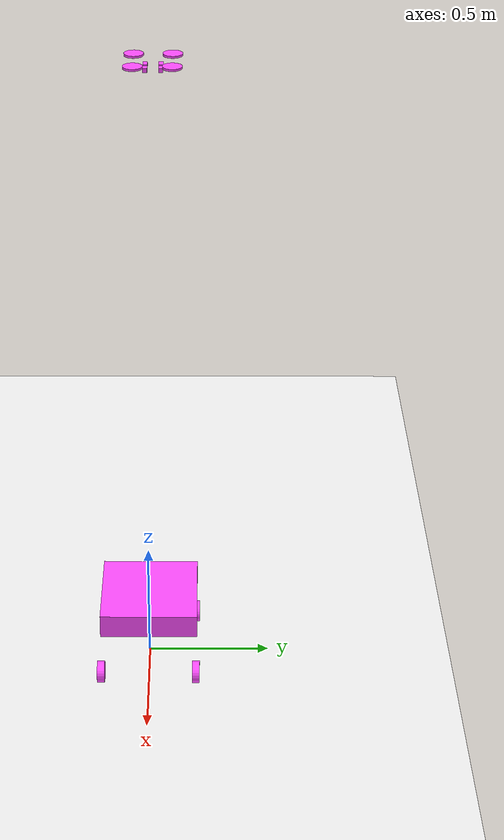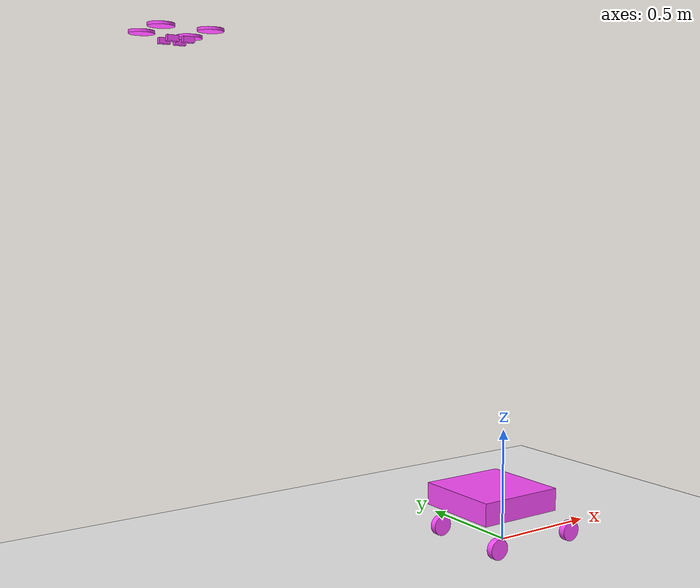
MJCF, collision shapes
<mujoco model="drone-v1">
    <include file="scenes/scene.xml"/>
    <include file="assets/dep-v2.3.xml"/>
    <compiler meshdir="meshes/"/>
    <worldbody>
    <camera name="Main_fixed_cam" pos="7 0 1" xyaxes="0 1 0 -0.1 0 1" />
        <body name="drone_frame" pos="-1.5 0 2">
            <camera name="Tracking_com" mode="trackcom" pos="-2.5 0 1.6" xyaxes="0 -1 0 0.6 0 1"/>
            <joint name="Tx" pos="0 0 0" axis="1 0 0" limited="true" type="slide" range="-10 100"/>
            <joint name="Ty" pos="0 0 0" axis="0 1 0" limited="true" type="slide" range="-10 100"/>
            <joint name="Tz" pos="0 0 0" axis="0 0 1" limited="true" type="slide" range="-10 100"/>
            <joint name="Rx" pos="0 0 0" axis="1 0 0" limited="true" range="-20 20"/>
            <joint name="Ry" pos="0 0 0" axis="0 1 0" limited="true" range="-20 20"/>
            <joint name="Rz" pos="0 0 0" axis="0 0 1" limited="true" range="-20 100"/>
            <include file="assets/chain-v2.3.xml"/>
        </body>

        <body name="car_frame" pos="0 0 0">
            <joint name="Tx_car" pos="0 0 0" axis="1 0 0" limited="true" type="slide" range="-10 100"/>
            <joint name="Ty_car" pos="0 0 0" axis="0 1 0" limited="true" type="slide" range="-10 100"/>
            <joint name="Tz_car" pos="0 0 0" axis="0 0 1" limited="true" type="slide" range="-10 100"/>
            <joint name="Rx_car" pos="0 0 0" axis="1 0 0" limited="true" range="-20 20"/>
            <joint name="Ry_car" pos="0 0 0" axis="0 1 0" limited="true" range="-20 20"/>
            <joint name="Rz_car" pos="0 0 0" axis="0 0 1" limited="true" range="-20 100"/>
            <include file="assets/chain-v2.4.xml"/>
        </body>

    </worldbody>
</mujoco>

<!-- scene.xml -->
<mujocoinclude>
  <asset>
    <!-- builtin="flat"-->
    <texture name="texplane" type="2d" builtin="flat" rgb1="0.95 0.95 0.95"  width="5120" height="5120"/>
    <material name="MatPlane" reflectance="0" texture="texplane" texrepeat="1 1" texuniform="true"  />
    <mesh name="test_Map" file="curved_map.STL"/>
    <mesh name="strai_Map" file="straight_line4.STL"/>

    <mesh name="curved_Map1" file="curved_map_1.STL"/>
    <mesh name="curved_Map2" file="curved_map_2.STL"/>

    <mesh name="C_Map1" file="C-map_1.STL"/>
    <mesh name="C_Map2" file="C-map_2.STL"/>
    <mesh name="C_Map3" file="C-map_3.STL"/>
    <mesh name="C_Map4" file="C-map_4.STL"/>
  </asset>

  <visual>
    <headlight ambient="0.5 0.5 0.5" />
  </visual>

  <worldbody>
    <light directional="false" diffuse=".3 .3 .3" specular="0.3 0.3 0.3" pos="0 0 1000" />

    <geom name="floor" pos="0 0 0" size="30 5 .1" conaffinity="1" contype="1" type="plane" material="MatPlane" condim="4"/>
    <site name="xaxis" pos=".5 0 0" size=".005 .5" type="capsule" rgba="1 0 0 .25" euler="0 1.57 0" group="3"/>
    <site name="yaxis" pos="0 .5 0" size=".005 .5" type="capsule" rgba="0 1 0 .25" euler="1.57 0 0" group="3"/>

    <!-- TASK 1 -->

    <!-- TASK 2 -->

  </worldbody>
</mujocoinclude>

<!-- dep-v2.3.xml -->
<mujocoinclude>
    <compiler angle="radian"/>
    <option timestep="0.01"/>
    <size njmax="-1" nconmax="-1"/>

    <default>
        <default class="drone_car">
            <joint limited="true" range="-1.5 1.5" damping="0.1" armature="0.001"/>
            <geom contype="1" conaffinity="1" condim="4" group="1" margin="0.001"/>
            <position ctrllimited="true" forcelimited="true" forcerange="-0.5 0.5" kp="1" gear="1"/>

            <default class="main_body">
                <geom contype="0" conaffinity="0" group="1" type="mesh" rgba="1 1 1 1" mass="0"/>
            </default>

            <default class="blade">
                <geom mesh="Blade" contype="0" conaffinity="0" group="1" type="mesh" rgba="0.3 1 0.3 1" mass="0"/>
            </default>

            <default class="main_body_car">
                <geom contype="0" conaffinity="0" group="1" type="mesh" rgba="1 1 1 1" mass="0"/>
            </default>

            <default class="front_axis">
                <geom mesh="front_axis" contype="0" conaffinity="0" group="1" type="mesh" rgba="0.6 0.6 0.9 1" mass="0"/>
            </default>

            <default class="FL_wheel">
                <geom mesh="FL_wheel" contype="0" conaffinity="0" group="1" type="mesh" rgba="0 0 0 1" mass="0"/>
            </default>

            <default class="FR_wheel">
                <geom mesh="FR_wheel" contype="0" conaffinity="0" group="1" type="mesh" rgba="0 0 0 1" mass="0"/>
            </default>

            <default class="BL_wheel">
                <geom mesh="BL_wheel" contype="0" conaffinity="0" group="1" type="mesh" rgba="0 0 0 1" mass="0"/>
            </default>

            <default class="BR_wheel">
                <geom mesh="BR_wheel" contype="0" conaffinity="0" group="1" type="mesh" rgba="0 0 0 1" mass="0"/>
            </default>

            <default class="collision">
                <geom contype="1" conaffinity="1" group="4" rgba="1 0.3 1 0.5" friction = "2 0.0005 0.00001" />
            </default>

            <site pos="0.049 0 0" group="1" type="sphere" size="0.006"/>
        </default>

    </default>
    <asset>
        <mesh name="Main_body" file="main_body.STL"/>
        <mesh name="Blade" file="FR_blade.STL"/>

        <mesh name="main_body_car" file="main_body_car.STL" />
        <mesh name="truck" file="truck.STL" />
        <mesh name="landing_box" file="landing_box.STL" />
        <mesh name="landing_box_h" file="landing_box_h.STL" />
        <mesh name="main_body_car_col" file="main_body_car.STL" />
        <mesh name="front_axis" file="front_axis.STL" />

        <mesh name="FL_wheel" file="FL_wheel.STL" />
        <mesh name="FR_wheel" file="FR_wheel.STL" />
        <mesh name="BL_wheel" file="BL_wheel.STL" />
        <mesh name="BR_wheel" file="BR_wheel.STL" />

    </asset>
    <actuator>
        <position class="drone_car" name="FL_joint" joint="FL_joint" ctrlrange="-0.3 0.3"/>
        <position class="drone_car" name="FR_joint" joint="FR_joint" ctrlrange="-0.3 0.3"/>
        <position class="drone_car" name="BL_joint" joint="BL_joint" ctrlrange="-0.3 0.3"/>
        <position class="drone_car" name="BR_joint" joint="BR_joint" ctrlrange="-0.1 0.1"/>

    </actuator>
</mujocoinclude>

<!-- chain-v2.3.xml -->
<mujocoinclude>
    <body childclass="drone_car" name="Drone" pos="0 0 0.06" euler="-1.570796 -0.785398 0">

    <camera mode="fixed" name = "indi_eye_camera" pos ="0.0 -0.05003 0.0" euler="1.570796 0 -2.356194" fovy = "120"/>
        <!-- Torso  -->
        <geom class="main_body" name="Main_body" mesh="Main_body" rgba="1 0.3 0.3 1"/>
        <geom class="collision" name="Main_body_col_1" type="box" pos="0.045 0.01 0.005" size="0.01 0.01 0.02" euler="0 -0.785398 0" />
        <geom class="collision" name="Main_body_col_2" type="box" pos="-0.045 0.01 -0.005" size="0.01 0.01 0.02" euler="0 -0.785398 0" />
        <geom class="collision" name="Main_body_col_3" type="box" pos="0.005 0.01 0.045" size="0.01 0.01 0.02" euler="0 -0.785398 0" />
        <geom class="collision" name="Main_body_col_4" type="box" pos="-0.005 0.01 -0.045" size="0.01 0.01 0.02" euler="0 -0.785398 0" />

        <!-- For Axis check  -->

        <inertial pos="1.51341e-05 -0.0114215 -1.51759e-05" quat="0.653416 0.270518 0.27062 0.653171" mass="0.153935" diaginertia="0.00022914 0.000122973 0.000121538" />
        <!-- FL Blade -->
        <body name="FL_blade" pos="0.123715 -0.018 0" quat="0 -0.950714 0 -0.310071">
            <inertial pos="0 0.0025 0" quat="0.5 0.5 0.5 0.5" mass="0.00736933" diaginertia="9.62503e-06 4.82787e-06 4.82787e-06" />
            <joint name="FL_joint" pos="0 0 0" axis="0 1 0" />
            <geom class="blade"/>
            <geom class="collision" name="FL_blade_col" type="cylinder" pos="0 0.0025 0" size="0.045 0.005" euler="1.570796 0 0" />

        </body>
        <!-- FR Blade -->
        <body name="FR_blade" pos="0 -0.018 -0.123715" quat="0 -0.951214 0 0.308532">
            <inertial pos="0 0.0025 0" quat="0.707107 0 0 0.707107" mass="0.00736933" diaginertia="9.62503e-06 4.82787e-06 4.82787e-06" />
            <joint name="FR_joint" pos="0 0 0" axis="0 1 0" />
            <geom class="blade"/>
            <geom class="collision" name="FR_blade_col" type="cylinder" pos="0 0.0025 0" size="0.045 0.005" euler="1.570796 0 0" />

        </body>
        <!-- BL Blade -->
        <body name="BL_blade" pos="0 -0.023 0.123715" quat="0.630389 0 -0.77628 0">
            <inertial pos="0 -0.0025 0" quat="0.707107 0 0 0.707107" mass="0.00736933" diaginertia="9.62503e-06 4.82787e-06 4.82787e-06" />
            <joint name="BL_joint" pos="0 0 0" axis="0 1 0" />
            <geom class="blade"/>
            <geom class="collision" name="BL_blade_col" type="cylinder" pos="0 0.0025 0" size="0.045 0.005" euler="1.570796 0 0" />

        </body>
        <!-- BR Blade -->
        <body name="BR_blade" pos="-0.123715 -0.023 0" quat="0.28506 0 -0.95851 0">
            <inertial pos="0 -0.0025 0" quat="0.707107 0 0 0.707107" mass="0.00736933" diaginertia="9.62503e-06 4.82787e-06 4.82787e-06" />
            <joint name="BR_joint" pos="0 0 0" axis="0 1 0" />
            <geom class="blade"/>
            <geom class="collision" name="BR_blade_col" type="cylinder" pos="0 0.0025 0" size="0.045 0.005" euler="1.570796 0 0" />

        </body>
    </body>
</mujocoinclude>

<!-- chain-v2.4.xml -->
<mujocoinclude>
    <body childclass="drone_car" name="Car" pos="0 0 0.1" euler="1.570796 3.141592 0">

        <!-- Torso  -->
        <geom class="main_body" name="Truck" mesh="truck" rgba="0.6 0.6 0.9 1"/>
        <geom class="main_body" name="Landing_box_h" mesh="landing_box_h" pos="0.07 0.16 0" rgba="0.4 0.4 1 1"/>
        <geom class="collision" name="Landing_box_col" type="box" pos="0.07 0.11 0" size="0.20 0.05 0.20" euler="0 0 0" />
        <geom class="main_body" name="x" type="cylinder" pos="0.07 0.155 0" size="0.18 0.002" euler="1.570796 0 0" rgba="0 0 0 1"/>

        <inertial pos="-0.0716966 0.0590631 0" quat="0.525785 0.525785 0.472811 0.472811" mass="16.0322" diaginertia="0.696332 0.491238 0.245138" />
        <!-- FL Blade -->
        <body name="front_axis" pos="-0.22 0 0" quat="0 0.707107 0 -0.707107">
            <inertial pos="5.93917e-11 0.0457281 -6.0697e-09" quat="0 0.707107 0 0.707107" mass="0.0276778" diaginertia="0.000258681 0.000254859 4.21682e-06" />
            <joint name="main_to_axis" pos="0 0 0" axis="0 1 0" range="-0.5 0.5"  />
            <geom class="front_axis"/>
            <body name="FL_wheel" pos="-0.18 0.05 0" quat="0.268193 0.654272 0.654272 -0.268193">
                <inertial pos="0 -0.015 0" quat="0.707107 0 0 0.707107" mass="0.190852" diaginertia="0.000193237 0.000110933 0.000110933" />
                <joint name="FL_joint_car" pos="0 0 0" axis="0 1 0" range="-10000 10000" />
                <geom class="FL_wheel"/>
                <geom class="collision" name="FL_wheel_col" type="cylinder" pos="0 -0.015 0" size="0.045 0.015 " euler="1.570796 0 0" />

            </body>
            <body name="FR_wheel" pos="0.18 0.05 0" quat="0.451705 0.544024 -0.544024 0.451705">
                <inertial pos="0 -0.015 0" quat="0.707107 0 0 0.707107" mass="0.190852" diaginertia="0.000193237 0.000110933 0.000110933" />
                <joint name="FR_joint_car" pos="0 0 0" axis="0 1 0" range="-10000 10000" />
                <geom class="FR_wheel"/>
                <geom class="collision" name="FR_wheel_col" type="cylinder" pos="0 -0.015 0" size="0.045 0.015 " euler="1.570796 0 0" />
            </body>
        </body>
        <!-- FR Blade -->
        <body name="BL_wheel" pos="0.2 -0.05 0.18" quat="0 0 0.707107 0.707107">
            <inertial pos="0 0.015 0" quat="0.707107 0 0 0.707107" mass="0.190852" diaginertia="0.000193237 0.000110933 0.000110933" />
            <joint name="BL_joint_car" pos="0 0 0" axis="0 1 0" range="-10000 10000" />
            <geom class="BL_wheel"/>
            <geom class="collision" name="BL_wheel_col" type="cylinder" pos="0 0.015 0" size="0.045 0.015 " euler="1.570796 0 0" />
        </body>
        <!-- BL Blade -->
        <body name="BR_wheel" pos="0.2 -0.05 -0.18" quat="0 0 0.707107 0.707107">
            <inertial pos="0 -0.015 0" quat="0.707107 0 0 0.707107" mass="0.190852" diaginertia="0.000193237 0.000110933 0.000110933" />
            <joint name="BR_joint_car" pos="0 0 0" axis="0 1 0" range="-10000 10000" />
            <geom class="BR_wheel"/>
            <geom class="collision" name="BR_wheel_col" type="cylinder" pos="0 -0.015 0" size="0.045 0.015 " euler="1.570796 0 0" />
        </body>

    </body>
</mujocoinclude>
